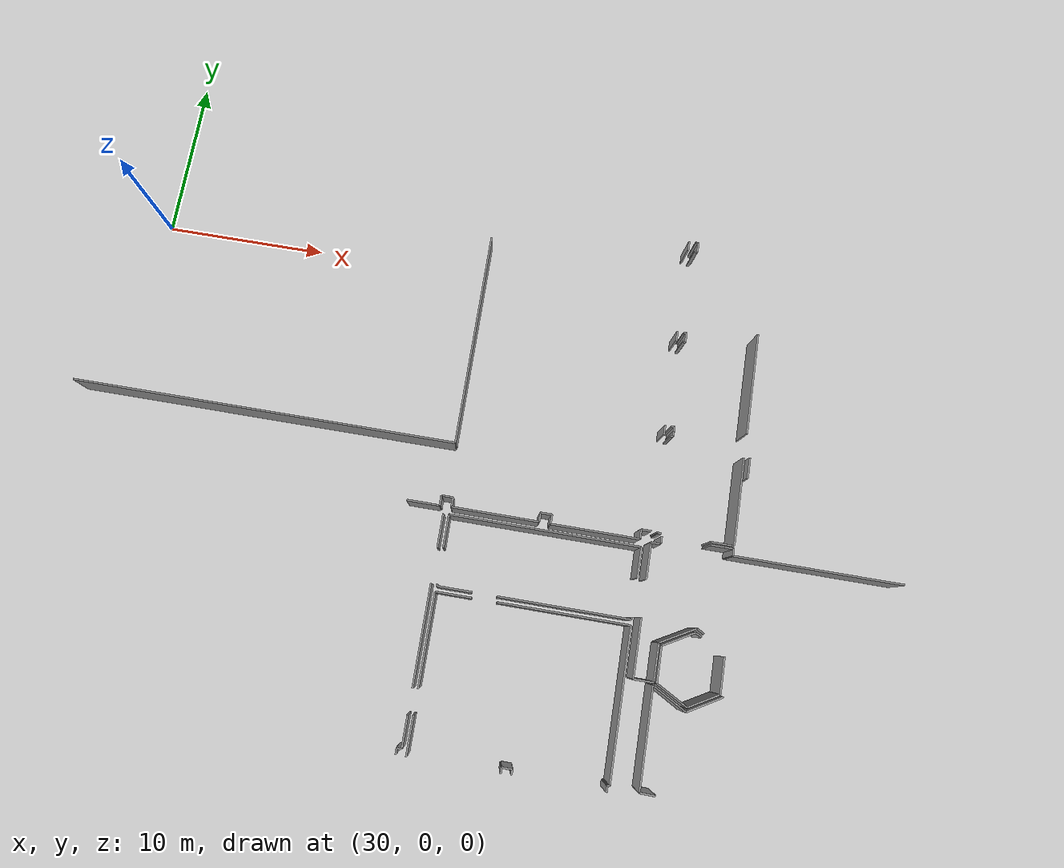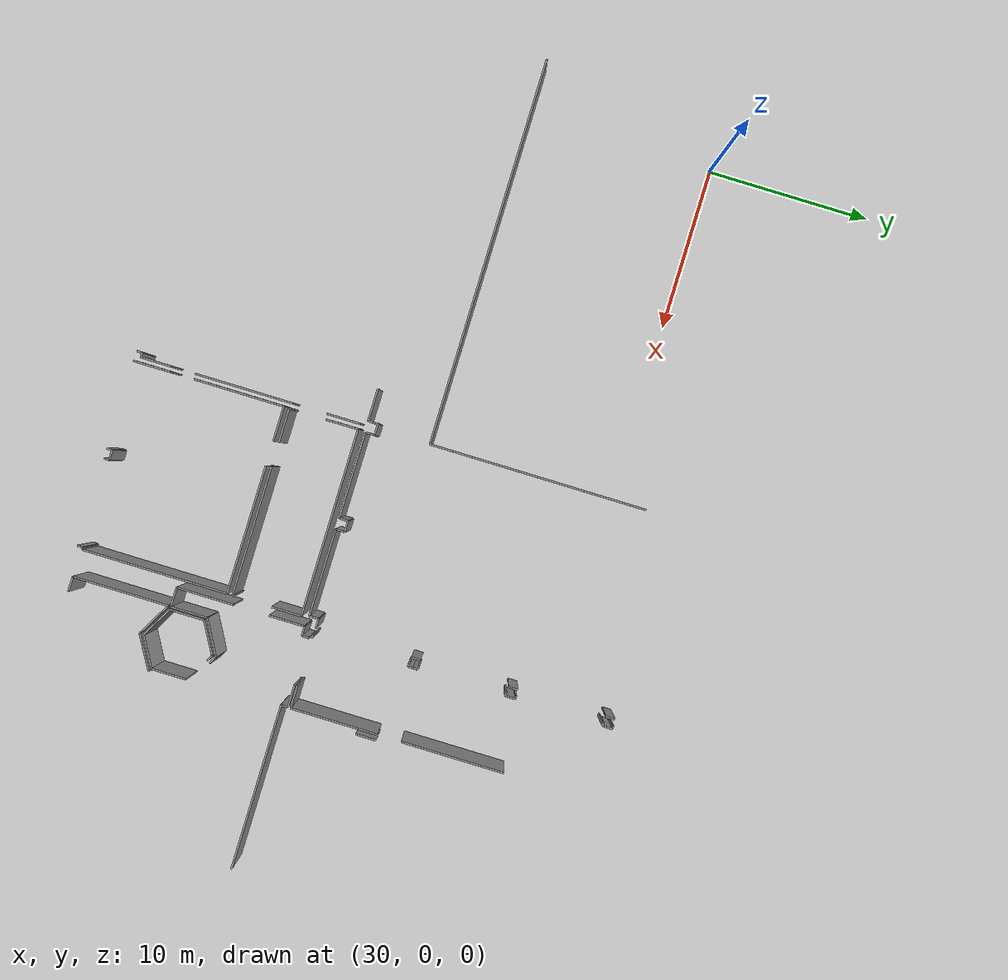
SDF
<sdf version="1.6">
 <world name="default">
  <model name="ground_plane">
   <static>1</static>
   <link name="link">
    <collision name="collision">
     <geometry><plane><normal>0 0 1</normal><size>100 100</size></plane></geometry>
     <surface><friction><ode><mu>100</mu><mu2>50</mu2></ode></friction></surface>
    </collision>
    <visual name="visual">
     <cast_shadows>0</cast_shadows>
     <geometry><plane><normal>0 0 1</normal><size>100 100</size></plane></geometry>
     <material>
      <script><uri>file://media/materials/scripts/gazebo.material</uri><name>Gazebo/Grey</name></script>
     </material>
    </visual>
   </link>
  </model>
  <model name="50010536_PLAN3">
   <static>1</static>
   <link name="Wall_413">
    <collision name="Wall_413_Collision">
     <geometry><box><size>2.01530013015 0.1 2.5</size></box></geometry>
     <pose>1.00765006507 0 1.25 0 0 0</pose>
    </collision>
    <visual name="Wall_413_Visual">
     <pose>1.00765006507 0 1.25 0 0 0</pose>
     <geometry><box><size>2.01530013015 0.1 2.5</size></box></geometry>
     <material>
      <script><uri>file://media/materials/scripts/gazebo.material</uri><name>Gazebo/Grey</name></script>
      <ambient>1 1 1 1</ambient>
     </material>
    </visual>
    <pose>153.481509697 -45.38442688 0 0 0 -1.57079632679</pose>
   </link>
   <link name="Wall_414">
    <collision name="Wall_414_Collision">
     <geometry><box><size>5.98546170206 0.1 2.5</size></box></geometry>
     <pose>2.99273085103 0 1.25 0 0 0</pose>
    </collision>
    <visual name="Wall_414_Visual">
     <pose>2.99273085103 0 1.25 0 0 0</pose>
     <geometry><box><size>5.98546170206 0.1 2.5</size></box></geometry>
     <material>
      <script><uri>file://media/materials/scripts/gazebo.material</uri><name>Gazebo/Grey</name></script>
      <ambient>1 1 1 1</ambient>
     </material>
    </visual>
    <pose>153.481509697 -49.5153350475 0 0 0 -1.57079632679</pose>
   </link>
   <link name="Wall_415">
    <collision name="Wall_415_Collision">
     <geometry><box><size>1.86572707361 0.1 2.5</size></box></geometry>
     <pose>0.932863536806 0 1.25 0 0 0</pose>
    </collision>
    <visual name="Wall_415_Visual">
     <pose>0.932863536806 0 1.25 0 0 0</pose>
     <geometry><box><size>1.86572707361 0.1 2.5</size></box></geometry>
     <material>
      <script><uri>file://media/materials/scripts/gazebo.material</uri><name>Gazebo/Grey</name></script>
      <ambient>1 1 1 1</ambient>
     </material>
    </visual>
    <pose>153.481509697 -56.9909405453 0 0 0 -1.57079632679</pose>
   </link>
   <link name="Wall_416">
    <collision name="Wall_416_Collision">
     <geometry><box><size>0.281877916389 0.1 2.5</size></box></geometry>
     <pose>0.140938958194 0 1.25 0 0 0</pose>
    </collision>
    <visual name="Wall_416_Visual">
     <pose>0.140938958194 0 1.25 0 0 0</pose>
     <geometry><box><size>0.281877916389 0.1 2.5</size></box></geometry>
     <material>
      <script><uri>file://media/materials/scripts/gazebo.material</uri><name>Gazebo/Grey</name></script>
      <ambient>1 1 1 1</ambient>
     </material>
    </visual>
    <pose>153.481509697 -58.856667619 0 0 0 3.14159265359</pose>
   </link>
   <link name="Wall_417">
    <collision name="Wall_417_Collision">
     <geometry><box><size>0.334190394566 0.1 2.5</size></box></geometry>
     <pose>0.167095197283 0 1.25 0 0 0</pose>
    </collision>
    <visual name="Wall_417_Visual">
     <pose>0.167095197283 0 1.25 0 0 0</pose>
     <geometry><box><size>0.334190394566 0.1 2.5</size></box></geometry>
     <material>
      <script><uri>file://media/materials/scripts/gazebo.material</uri><name>Gazebo/Grey</name></script>
      <ambient>1 1 1 1</ambient>
     </material>
    </visual>
    <pose>153.199631781 -58.856667619 0 0 0 -1.57079632679</pose>
   </link>
   <link name="Wall_427">
    <collision name="Wall_427_Collision">
     <geometry><box><size>2.28016379392 0.1 2.5</size></box></geometry>
     <pose>1.14008189696 0 1.25 0 0 0</pose>
    </collision>
    <visual name="Wall_427_Visual">
     <pose>1.14008189696 0 1.25 0 0 0</pose>
     <geometry><box><size>2.28016379392 0.1 2.5</size></box></geometry>
     <material>
      <script><uri>file://media/materials/scripts/gazebo.material</uri><name>Gazebo/Grey</name></script>
      <ambient>1 1 1 1</ambient>
     </material>
    </visual>
    <pose>153.807319938 -59.2266641272 0 0 0 1.57079632679</pose>
   </link>
   <link name="Wall_428">
    <collision name="Wall_428_Collision">
     <geometry><box><size>5.52125194426 0.1 2.5</size></box></geometry>
     <pose>2.76062597213 0 1.25 0 0 0</pose>
    </collision>
    <visual name="Wall_428_Visual">
     <pose>2.76062597213 0 1.25 0 0 0</pose>
     <geometry><box><size>5.52125194426 0.1 2.5</size></box></geometry>
     <material>
      <script><uri>file://media/materials/scripts/gazebo.material</uri><name>Gazebo/Grey</name></script>
      <ambient>1 1 1 1</ambient>
     </material>
    </visual>
    <pose>153.807319938 -55.4667682443 0 0 0 1.57079632679</pose>
   </link>
   <link name="Wall_429">
    <collision name="Wall_429_Collision">
     <geometry><box><size>2.14989048662 0.1 2.5</size></box></geometry>
     <pose>1.07494524331 0 1.25 0 0 0</pose>
    </collision>
    <visual name="Wall_429_Visual">
     <pose>1.07494524331 0 1.25 0 0 0</pose>
     <geometry><box><size>2.14989048662 0.1 2.5</size></box></geometry>
     <material>
      <script><uri>file://media/materials/scripts/gazebo.material</uri><name>Gazebo/Grey</name></script>
      <ambient>1 1 1 1</ambient>
     </material>
    </visual>
    <pose>153.807319938 -49.9455163 0 0 0 0.0</pose>
   </link>
   <link name="Wall_430">
    <collision name="Wall_430_Collision">
     <geometry><box><size>7.87226613338 0.1 2.5</size></box></geometry>
     <pose>3.93613306669 0 1.25 0 0 0</pose>
    </collision>
    <visual name="Wall_430_Visual">
     <pose>3.93613306669 0 1.25 0 0 0</pose>
     <geometry><box><size>7.87226613338 0.1 2.5</size></box></geometry>
     <material>
      <script><uri>file://media/materials/scripts/gazebo.material</uri><name>Gazebo/Grey</name></script>
      <ambient>1 1 1 1</ambient>
     </material>
    </visual>
    <pose>157.457511983 -49.9455163 0 0 0 0.0</pose>
   </link>
   <link name="Wall_431">
    <collision name="Wall_431_Collision">
     <geometry><box><size>8.90226327651 0.1 2.5</size></box></geometry>
     <pose>4.45113163826 0 1.25 0 0 0</pose>
    </collision>
    <visual name="Wall_431_Visual">
     <pose>4.45113163826 0 1.25 0 0 0</pose>
     <geometry><box><size>8.90226327651 0.1 2.5</size></box></geometry>
     <material>
      <script><uri>file://media/materials/scripts/gazebo.material</uri><name>Gazebo/Grey</name></script>
      <ambient>1 1 1 1</ambient>
     </material>
    </visual>
    <pose>165.329778116 -49.9455163 0 0 0 -1.57079632679</pose>
   </link>
   <link name="Wall_432">
    <collision name="Wall_432_Collision">
     <geometry><box><size>0.136875853093 0.1 2.5</size></box></geometry>
     <pose>0.0684379265467 0 1.25 0 0 0</pose>
    </collision>
    <visual name="Wall_432_Visual">
     <pose>0.0684379265467 0 1.25 0 0 0</pose>
     <geometry><box><size>0.136875853093 0.1 2.5</size></box></geometry>
     <material>
      <script><uri>file://media/materials/scripts/gazebo.material</uri><name>Gazebo/Grey</name></script>
      <ambient>1 1 1 1</ambient>
     </material>
    </visual>
    <pose>165.329778116 -58.8477795765 0 0 0 3.14159265359</pose>
   </link>
   <link name="Wall_433">
    <collision name="Wall_433_Collision">
     <geometry><box><size>0.357807192966 0.1 2.5</size></box></geometry>
     <pose>0.178903596483 0 1.25 0 0 0</pose>
    </collision>
    <visual name="Wall_433_Visual">
     <pose>0.178903596483 0 1.25 0 0 0</pose>
     <geometry><box><size>0.357807192966 0.1 2.5</size></box></geometry>
     <material>
      <script><uri>file://media/materials/scripts/gazebo.material</uri><name>Gazebo/Grey</name></script>
      <ambient>1 1 1 1</ambient>
     </material>
    </visual>
    <pose>165.192902263 -58.8477795765 0 0 0 -1.57079632679</pose>
   </link>
   <link name="Wall_434">
    <collision name="Wall_434_Collision">
     <geometry><box><size>0.321493191125 0.1 2.5</size></box></geometry>
     <pose>0.160746595562 0 1.25 0 0 0</pose>
    </collision>
    <visual name="Wall_434_Visual">
     <pose>0.160746595562 0 1.25 0 0 0</pose>
     <geometry><box><size>0.321493191125 0.1 2.5</size></box></geometry>
     <material>
      <script><uri>file://media/materials/scripts/gazebo.material</uri><name>Gazebo/Grey</name></script>
      <ambient>1 1 1 1</ambient>
     </material>
    </visual>
    <pose>159.812589277 -59.2055867695 0 0 0 1.57079632679</pose>
   </link>
   <link name="Wall_435">
    <collision name="Wall_435_Collision">
     <geometry><box><size>0.610735485509 0.1 2.5</size></box></geometry>
     <pose>0.305367742755 0 1.25 0 0 0</pose>
    </collision>
    <visual name="Wall_435_Visual">
     <pose>0.305367742755 0 1.25 0 0 0</pose>
     <geometry><box><size>0.610735485509 0.1 2.5</size></box></geometry>
     <material>
      <script><uri>file://media/materials/scripts/gazebo.material</uri><name>Gazebo/Grey</name></script>
      <ambient>1 1 1 1</ambient>
     </material>
    </visual>
    <pose>159.812589277 -58.8840935784 0 0 0 3.14159265359</pose>
   </link>
   <link name="Wall_436">
    <collision name="Wall_436_Collision">
     <geometry><box><size>0.330381233533 0.1 2.5</size></box></geometry>
     <pose>0.165190616767 0 1.25 0 0 0</pose>
    </collision>
    <visual name="Wall_436_Visual">
     <pose>0.165190616767 0 1.25 0 0 0</pose>
     <geometry><box><size>0.330381233533 0.1 2.5</size></box></geometry>
     <material>
      <script><uri>file://media/materials/scripts/gazebo.material</uri><name>Gazebo/Grey</name></script>
      <ambient>1 1 1 1</ambient>
     </material>
    </visual>
    <pose>159.201853792 -58.8840935784 0 0 0 -1.57079632679</pose>
   </link>
   <link name="Wall_437">
    <collision name="Wall_437_Collision">
     <geometry><box><size>11.512808304 0.1 2.5</size></box></geometry>
     <pose>5.75640415199 0 1.25 0 0 0</pose>
    </collision>
    <visual name="Wall_437_Visual">
     <pose>5.75640415199 0 1.25 0 0 0</pose>
     <geometry><box><size>11.512808304 0.1 2.5</size></box></geometry>
     <material>
      <script><uri>file://media/materials/scripts/gazebo.material</uri><name>Gazebo/Grey</name></script>
      <ambient>1 1 1 1</ambient>
     </material>
    </visual>
    <pose>153.813922484 -45.3699520681 0 0 0 0.0</pose>
   </link>
   <link name="Wall_438">
    <collision name="Wall_438_Collision">
     <geometry><box><size>1.82941307177 0.1 2.5</size></box></geometry>
     <pose>0.914706535885 0 1.25 0 0 0</pose>
    </collision>
    <visual name="Wall_438_Visual">
     <pose>0.914706535885 0 1.25 0 0 0</pose>
     <geometry><box><size>1.82941307177 0.1 2.5</size></box></geometry>
     <material>
      <script><uri>file://media/materials/scripts/gazebo.material</uri><name>Gazebo/Grey</name></script>
      <ambient>1 1 1 1</ambient>
     </material>
    </visual>
    <pose>165.326730788 -45.3699520681 0 0 0 -1.57079632679</pose>
   </link>
   <link name="Wall_439">
    <collision name="Wall_439_Collision">
     <geometry><box><size>0.142462622607 0.1 2.5</size></box></geometry>
     <pose>0.0712313113037 0 1.25 0 0 0</pose>
    </collision>
    <visual name="Wall_439_Visual">
     <pose>0.0712313113037 0 1.25 0 0 0</pose>
     <geometry><box><size>0.142462622607 0.1 2.5</size></box></geometry>
     <material>
      <script><uri>file://media/materials/scripts/gazebo.material</uri><name>Gazebo/Grey</name></script>
      <ambient>1 1 1 1</ambient>
     </material>
    </visual>
    <pose>165.326730788 -49.4726724439 0 0 0 -1.57079632679</pose>
   </link>
   <link name="Wall_440">
    <collision name="Wall_440_Collision">
     <geometry><box><size>7.91721423357 0.1 2.5</size></box></geometry>
     <pose>3.95860711678 0 1.25 0 0 0</pose>
    </collision>
    <visual name="Wall_440_Visual">
     <pose>3.95860711678 0 1.25 0 0 0</pose>
     <geometry><box><size>7.91721423357 0.1 2.5</size></box></geometry>
     <material>
      <script><uri>file://media/materials/scripts/gazebo.material</uri><name>Gazebo/Grey</name></script>
      <ambient>1 1 1 1</ambient>
     </material>
    </visual>
    <pose>165.326730788 -49.6151350665 0 0 0 3.14159265359</pose>
   </link>
   <link name="Wall_441">
    <collision name="Wall_441_Collision">
     <geometry><box><size>2.09376884741 0.1 2.5</size></box></geometry>
     <pose>1.04688442371 0 1.25 0 0 0</pose>
    </collision>
    <visual name="Wall_441_Visual">
     <pose>1.04688442371 0 1.25 0 0 0</pose>
     <geometry><box><size>2.09376884741 0.1 2.5</size></box></geometry>
     <material>
      <script><uri>file://media/materials/scripts/gazebo.material</uri><name>Gazebo/Grey</name></script>
      <ambient>1 1 1 1</ambient>
     </material>
    </visual>
    <pose>155.921150367 -49.6151350665 0 0 0 3.14159265359</pose>
   </link>
   <link name="Wall_442">
    <collision name="Wall_442_Collision">
     <geometry><box><size>0.123670761515 0.1 2.5</size></box></geometry>
     <pose>0.0618353807574 0 1.25 0 0 0</pose>
    </collision>
    <visual name="Wall_442_Visual">
     <pose>0.0618353807574 0 1.25 0 0 0</pose>
     <geometry><box><size>0.123670761515 0.1 2.5</size></box></geometry>
     <material>
      <script><uri>file://media/materials/scripts/gazebo.material</uri><name>Gazebo/Grey</name></script>
      <ambient>1 1 1 1</ambient>
     </material>
    </visual>
    <pose>153.827381519 -49.6151350665 0 0 0 1.57079632679</pose>
   </link>
   <link name="Wall_443">
    <collision name="Wall_443_Collision">
     <geometry><box><size>1.99096699193 0.1 2.5</size></box></geometry>
     <pose>0.995483495967 0 1.25 0 0 0</pose>
    </collision>
    <visual name="Wall_443_Visual">
     <pose>0.995483495967 0 1.25 0 0 0</pose>
     <geometry><box><size>1.99096699193 0.1 2.5</size></box></geometry>
     <material>
      <script><uri>file://media/materials/scripts/gazebo.material</uri><name>Gazebo/Grey</name></script>
      <ambient>1 1 1 1</ambient>
     </material>
    </visual>
    <pose>153.827381519 -47.3608735676 0 0 0 1.5775564279</pose>
   </link>
   <link name="Wall_819">
    <collision name="Wall_819_Collision">
     <geometry><box><size>1.2704821763 0.1 2.5</size></box></geometry>
     <pose>0.63524108815 0 1.25 0 0 0</pose>
    </collision>
    <visual name="Wall_819_Visual">
     <pose>0.63524108815 0 1.25 0 0 0</pose>
     <geometry><box><size>1.2704821763 0.1 2.5</size></box></geometry>
     <material>
      <script><uri>file://media/materials/scripts/gazebo.material</uri><name>Gazebo/Grey</name></script>
      <ambient>1 1 1 1</ambient>
     </material>
    </visual>
    <pose>171.055455036 -40.2887851951 0 0 0 1.57079632679</pose>
   </link>
   <link name="Wall_849">
    <collision name="Wall_849_Collision">
     <geometry><box><size>13.3346030537 0.1 2.5</size></box></geometry>
     <pose>6.66730152684 0 1.25 0 0 0</pose>
    </collision>
    <visual name="Wall_849_Visual">
     <pose>6.66730152684 0 1.25 0 0 0</pose>
     <geometry><box><size>13.3346030537 0.1 2.5</size></box></geometry>
     <material>
      <script><uri>file://media/materials/scripts/gazebo.material</uri><name>Gazebo/Grey</name></script>
      <ambient>1 1 1 1</ambient>
     </material>
    </visual>
    <pose>153.43986287 -27.7292194394 0 0 0 -1.57079632679</pose>
   </link>
   <link name="Wall_850">
    <collision name="Wall_850_Collision">
     <geometry><box><size>23.7171063073 0.1 2.5</size></box></geometry>
     <pose>11.8585531537 0 1.25 0 0 0</pose>
    </collision>
    <visual name="Wall_850_Visual">
     <pose>11.8585531537 0 1.25 0 0 0</pose>
     <geometry><box><size>23.7171063073 0.1 2.5</size></box></geometry>
     <material>
      <script><uri>file://media/materials/scripts/gazebo.material</uri><name>Gazebo/Grey</name></script>
      <ambient>1 1 1 1</ambient>
     </material>
    </visual>
    <pose>153.43986287 -41.0638224931 0 0 0 3.14159265359</pose>
   </link>
   <link name="Wall_853">
    <collision name="Wall_853_Collision">
     <geometry><box><size>0.301177665619 0.1 2.5</size></box></geometry>
     <pose>0.15058883281 0 1.25 0 0 0</pose>
    </collision>
    <visual name="Wall_853_Visual">
     <pose>0.15058883281 0 1.25 0 0 0</pose>
     <geometry><box><size>0.301177665619 0.1 2.5</size></box></geometry>
     <material>
      <script><uri>file://media/materials/scripts/gazebo.material</uri><name>Gazebo/Grey</name></script>
      <ambient>1 1 1 1</ambient>
     </material>
    </visual>
    <pose>166.34606228 -38.1940005714 0 0 0 1.57079632679</pose>
   </link>
   <link name="Wall_854">
    <collision name="Wall_854_Collision">
     <geometry><box><size>0.189696219408 0.1 2.5</size></box></geometry>
     <pose>0.0948481097038 0 1.25 0 0 0</pose>
    </collision>
    <visual name="Wall_854_Visual">
     <pose>0.0948481097038 0 1.25 0 0 0</pose>
     <geometry><box><size>0.189696219408 0.1 2.5</size></box></geometry>
     <material>
      <script><uri>file://media/materials/scripts/gazebo.material</uri><name>Gazebo/Grey</name></script>
      <ambient>1 1 1 1</ambient>
     </material>
    </visual>
    <pose>166.34606228 -37.8928229058 0 0 0 3.14159265359</pose>
   </link>
   <link name="Wall_855">
    <collision name="Wall_855_Collision">
     <geometry><box><size>0.181570009206 0.1 2.5</size></box></geometry>
     <pose>0.0907850046028 0 1.25 0 0 0</pose>
    </collision>
    <visual name="Wall_855_Visual">
     <pose>0.0907850046028 0 1.25 0 0 0</pose>
     <geometry><box><size>0.181570009206 0.1 2.5</size></box></geometry>
     <material>
      <script><uri>file://media/materials/scripts/gazebo.material</uri><name>Gazebo/Grey</name></script>
      <ambient>1 1 1 1</ambient>
     </material>
    </visual>
    <pose>166.15636606 -32.5066692061 0 0 0 0.0</pose>
   </link>
   <link name="Wall_856">
    <collision name="Wall_856_Collision">
     <geometry><box><size>0.61911563978 0.1 2.5</size></box></geometry>
     <pose>0.30955781989 0 1.25 0 0 0</pose>
    </collision>
    <visual name="Wall_856_Visual">
     <pose>0.30955781989 0 1.25 0 0 0</pose>
     <geometry><box><size>0.61911563978 0.1 2.5</size></box></geometry>
     <material>
      <script><uri>file://media/materials/scripts/gazebo.material</uri><name>Gazebo/Grey</name></script>
      <ambient>1 1 1 1</ambient>
     </material>
    </visual>
    <pose>166.33793607 -32.5066692061 0 0 0 1.57079632679</pose>
   </link>
   <link name="Wall_857">
    <collision name="Wall_857_Collision">
     <geometry><box><size>0.169126749833 0.1 2.5</size></box></geometry>
     <pose>0.0845633749167 0 1.25 0 0 0</pose>
    </collision>
    <visual name="Wall_857_Visual">
     <pose>0.0845633749167 0 1.25 0 0 0</pose>
     <geometry><box><size>0.169126749833 0.1 2.5</size></box></geometry>
     <material>
      <script><uri>file://media/materials/scripts/gazebo.material</uri><name>Gazebo/Grey</name></script>
      <ambient>1 1 1 1</ambient>
     </material>
    </visual>
    <pose>166.33793607 -31.8875535663 0 0 0 3.14159265359</pose>
   </link>
   <link name="Wall_858">
    <collision name="Wall_858_Collision">
     <geometry><box><size>0.191981716027 0.1 2.5</size></box></geometry>
     <pose>0.0959908580135 0 1.25 0 0 0</pose>
    </collision>
    <visual name="Wall_858_Visual">
     <pose>0.0959908580135 0 1.25 0 0 0</pose>
     <geometry><box><size>0.191981716027 0.1 2.5</size></box></geometry>
     <material>
      <script><uri>file://media/materials/scripts/gazebo.material</uri><name>Gazebo/Grey</name></script>
      <ambient>1 1 1 1</ambient>
     </material>
    </visual>
    <pose>166.16880932 -26.5064787481 0 0 0 0.0</pose>
   </link>
   <link name="Wall_859">
    <collision name="Wall_859_Collision">
     <geometry><box><size>0.610227597372 0.1 2.5</size></box></geometry>
     <pose>0.305113798686 0 1.25 0 0 0</pose>
    </collision>
    <visual name="Wall_859_Visual">
     <pose>0.305113798686 0 1.25 0 0 0</pose>
     <geometry><box><size>0.610227597372 0.1 2.5</size></box></geometry>
     <material>
      <script><uri>file://media/materials/scripts/gazebo.material</uri><name>Gazebo/Grey</name></script>
      <ambient>1 1 1 1</ambient>
     </material>
    </visual>
    <pose>166.360791036 -26.5064787481 0 0 0 1.57079632679</pose>
   </link>
   <link name="Wall_860">
    <collision name="Wall_860_Collision">
     <geometry><box><size>0.193759324509 0.1 2.5</size></box></geometry>
     <pose>0.0968796622544 0 1.25 0 0 0</pose>
    </collision>
    <visual name="Wall_860_Visual">
     <pose>0.0968796622544 0 1.25 0 0 0</pose>
     <geometry><box><size>0.193759324509 0.1 2.5</size></box></geometry>
     <material>
      <script><uri>file://media/materials/scripts/gazebo.material</uri><name>Gazebo/Grey</name></script>
      <ambient>1 1 1 1</ambient>
     </material>
    </visual>
    <pose>166.360791036 -25.8962511507 0 0 0 3.14159265359</pose>
   </link>
   <link name="Wall_869">
    <collision name="Wall_869_Collision">
     <geometry><box><size>6.34504650351 0.1 2.5</size></box></geometry>
     <pose>3.17252325175 0 1.25 0 0 0</pose>
    </collision>
    <visual name="Wall_869_Visual">
     <pose>3.17252325175 0 1.25 0 0 0</pose>
     <geometry><box><size>6.34504650351 0.1 2.5</size></box></geometry>
     <material>
      <script><uri>file://media/materials/scripts/gazebo.material</uri><name>Gazebo/Grey</name></script>
      <ambient>1 1 1 1</ambient>
     </material>
    </visual>
    <pose>170.710598991 -31.2547249468 0 0 0 -1.57079632679</pose>
   </link>
   <link name="Wall_870">
    <collision name="Wall_870_Collision">
     <geometry><box><size>5.34298320795 0.1 2.5</size></box></geometry>
     <pose>2.67149160397 0 1.25 0 0 0</pose>
    </collision>
    <visual name="Wall_870_Visual">
     <pose>2.67149160397 0 1.25 0 0 0</pose>
     <geometry><box><size>5.34298320795 0.1 2.5</size></box></geometry>
     <material>
      <script><uri>file://media/materials/scripts/gazebo.material</uri><name>Gazebo/Grey</name></script>
      <ambient>1 1 1 1</ambient>
     </material>
    </visual>
    <pose>170.710598991 -39.0604577342 0 0 0 -1.57079632679</pose>
   </link>
   <link name="Wall_871">
    <collision name="Wall_871_Collision">
     <geometry><box><size>1.39643843443 0.1 2.5</size></box></geometry>
     <pose>0.698219217217 0 1.25 0 0 0</pose>
    </collision>
    <visual name="Wall_871_Visual">
     <pose>0.698219217217 0 1.25 0 0 0</pose>
     <geometry><box><size>1.39643843443 0.1 2.5</size></box></geometry>
     <material>
      <script><uri>file://media/materials/scripts/gazebo.material</uri><name>Gazebo/Grey</name></script>
      <ambient>1 1 1 1</ambient>
     </material>
    </visual>
    <pose>170.710598991 -44.4034409421 0 0 0 3.14159265359</pose>
   </link>
   <link name="Wall_872">
    <collision name="Wall_872_Collision">
     <geometry><box><size>0.224232612767 0.1 2.5</size></box></geometry>
     <pose>0.112116306384 0 1.25 0 0 0</pose>
    </collision>
    <visual name="Wall_872_Visual">
     <pose>0.112116306384 0 1.25 0 0 0</pose>
     <geometry><box><size>0.224232612767 0.1 2.5</size></box></geometry>
     <material>
      <script><uri>file://media/materials/scripts/gazebo.material</uri><name>Gazebo/Grey</name></script>
      <ambient>1 1 1 1</ambient>
     </material>
    </visual>
    <pose>166.398374758 -44.4034409421 0 0 0 3.14159265359</pose>
   </link>
   <link name="Wall_873">
    <collision name="Wall_873_Collision">
     <geometry><box><size>0.0845633749167 0.1 2.5</size></box></geometry>
     <pose>0.0422816874583 0 1.25 0 0 0</pose>
    </collision>
    <visual name="Wall_873_Visual">
     <pose>0.0422816874583 0 1.25 0 0 0</pose>
     <geometry><box><size>0.0845633749167 0.1 2.5</size></box></geometry>
     <material>
      <script><uri>file://media/materials/scripts/gazebo.material</uri><name>Gazebo/Grey</name></script>
      <ambient>1 1 1 1</ambient>
     </material>
    </visual>
    <pose>166.174142145 -44.4034409421 0 0 0 1.57079632679</pose>
   </link>
   <link name="Wall_874">
    <collision name="Wall_874_Collision">
     <geometry><box><size>0.159222931149 0.1 2.5</size></box></geometry>
     <pose>0.0796114655747 0 1.25 0 0 0</pose>
    </collision>
    <visual name="Wall_874_Visual">
     <pose>0.0796114655747 0 1.25 0 0 0</pose>
     <geometry><box><size>0.159222931149 0.1 2.5</size></box></geometry>
     <material>
      <script><uri>file://media/materials/scripts/gazebo.material</uri><name>Gazebo/Grey</name></script>
      <ambient>1 1 1 1</ambient>
     </material>
    </visual>
    <pose>166.174142145 -38.4895914675 0 0 0 0.0</pose>
   </link>
   <link name="Wall_875">
    <collision name="Wall_875_Collision">
     <geometry><box><size>0.295863476684 0.1 2.5</size></box></geometry>
     <pose>0.147931738342 0 1.25 0 0 0</pose>
    </collision>
    <visual name="Wall_875_Visual">
     <pose>0.147931738342 0 1.25 0 0 0</pose>
     <geometry><box><size>0.295863476684 0.1 2.5</size></box></geometry>
     <material>
      <script><uri>file://media/materials/scripts/gazebo.material</uri><name>Gazebo/Grey</name></script>
      <ambient>1 1 1 1</ambient>
     </material>
    </visual>
    <pose>166.333365076 -38.4895914675 0 0 0 1.52786739094</pose>
   </link>
   <link name="Wall_880">
    <collision name="Wall_880_Collision">
     <geometry><box><size>0.558676951401 0.1 2.5</size></box></geometry>
     <pose>0.279338475701 0 1.25 0 0 0</pose>
    </collision>
    <visual name="Wall_880_Visual">
     <pose>0.279338475701 0 1.25 0 0 0</pose>
     <geometry><box><size>0.558676951401 0.1 2.5</size></box></geometry>
     <material>
      <script><uri>file://media/materials/scripts/gazebo.material</uri><name>Gazebo/Grey</name></script>
      <ambient>1 1 1 1</ambient>
     </material>
    </visual>
    <pose>165.781798559 -25.9180903406 0 0 0 -1.57079632679</pose>
   </link>
   <link name="Wall_881">
    <collision name="Wall_881_Collision">
     <geometry><box><size>0.589658127797 0.1 2.5</size></box></geometry>
     <pose>0.294829063899 0 1.25 0 0 0</pose>
    </collision>
    <visual name="Wall_881_Visual">
     <pose>0.294829063899 0 1.25 0 0 0</pose>
     <geometry><box><size>0.589658127797 0.1 2.5</size></box></geometry>
     <material>
      <script><uri>file://media/materials/scripts/gazebo.material</uri><name>Gazebo/Grey</name></script>
      <ambient>1 1 1 1</ambient>
     </material>
    </visual>
    <pose>165.781798559 -31.893648224 0 0 0 -1.57079632679</pose>
   </link>
   <link name="Wall_882">
    <collision name="Wall_882_Collision">
     <geometry><box><size>0.583817414215 0.1 2.5</size></box></geometry>
     <pose>0.291908707107 0 1.25 0 0 0</pose>
    </collision>
    <visual name="Wall_882_Visual">
     <pose>0.291908707107 0 1.25 0 0 0</pose>
     <geometry><box><size>0.583817414215 0.1 2.5</size></box></geometry>
     <material>
      <script><uri>file://media/materials/scripts/gazebo.material</uri><name>Gazebo/Grey</name></script>
      <ambient>1 1 1 1</ambient>
     </material>
    </visual>
    <pose>165.781798559 -37.8824111989 0 0 0 -1.57079632679</pose>
   </link>
   <link name="Wall_883">
    <collision name="Wall_883_Collision">
     <geometry><box><size>0.594990953243 0.1 2.5</size></box></geometry>
     <pose>0.297495476621 0 1.25 0 0 0</pose>
    </collision>
    <visual name="Wall_883_Visual">
     <pose>0.297495476621 0 1.25 0 0 0</pose>
     <geometry><box><size>0.594990953243 0.1 2.5</size></box></geometry>
     <material>
      <script><uri>file://media/materials/scripts/gazebo.material</uri><name>Gazebo/Grey</name></script>
      <ambient>1 1 1 1</ambient>
     </material>
    </visual>
    <pose>165.781798559 -44.3490969114 0 0 0 3.14159265359</pose>
   </link>
   <link name="Wall_884">
    <collision name="Wall_884_Collision">
     <geometry><box><size>0.57619909215 0.1 2.5</size></box></geometry>
     <pose>0.288099546075 0 1.25 0 0 0</pose>
    </collision>
    <visual name="Wall_884_Visual">
     <pose>0.288099546075 0 1.25 0 0 0</pose>
     <geometry><box><size>0.57619909215 0.1 2.5</size></box></geometry>
     <material>
      <script><uri>file://media/materials/scripts/gazebo.material</uri><name>Gazebo/Grey</name></script>
      <ambient>1 1 1 1</ambient>
     </material>
    </visual>
    <pose>165.186807606 -44.3490969114 0 0 0 -1.57079632679</pose>
   </link>
   <link name="Wall_885">
    <collision name="Wall_885_Collision">
     <geometry><box><size>5.33561882995 0.1 2.5</size></box></geometry>
     <pose>2.66780941498 0 1.25 0 0 0</pose>
    </collision>
    <visual name="Wall_885_Visual">
     <pose>2.66780941498 0 1.25 0 0 0</pose>
     <geometry><box><size>5.33561882995 0.1 2.5</size></box></geometry>
     <material>
      <script><uri>file://media/materials/scripts/gazebo.material</uri><name>Gazebo/Grey</name></script>
      <ambient>1 1 1 1</ambient>
     </material>
    </visual>
    <pose>165.186807606 -44.9252960036 0 0 0 3.14159265359</pose>
   </link>
   <link name="Wall_886">
    <collision name="Wall_886_Collision">
     <geometry><box><size>0.558676951401 0.1 2.5</size></box></geometry>
     <pose>0.279338475701 0 1.25 0 0 0</pose>
    </collision>
    <visual name="Wall_886_Visual">
     <pose>0.279338475701 0 1.25 0 0 0</pose>
     <geometry><box><size>0.558676951401 0.1 2.5</size></box></geometry>
     <material>
      <script><uri>file://media/materials/scripts/gazebo.material</uri><name>Gazebo/Grey</name></script>
      <ambient>1 1 1 1</ambient>
     </material>
    </visual>
    <pose>159.851188776 -44.9252960036 0 0 0 1.57079632679</pose>
   </link>
   <link name="Wall_887">
    <collision name="Wall_887_Collision">
     <geometry><box><size>0.690473923118 0.1 2.5</size></box></geometry>
     <pose>0.345236961559 0 1.25 0 0 0</pose>
    </collision>
    <visual name="Wall_887_Visual">
     <pose>0.345236961559 0 1.25 0 0 0</pose>
     <geometry><box><size>0.690473923118 0.1 2.5</size></box></geometry>
     <material>
      <script><uri>file://media/materials/scripts/gazebo.material</uri><name>Gazebo/Grey</name></script>
      <ambient>1 1 1 1</ambient>
     </material>
    </visual>
    <pose>159.851188776 -44.3666190522 0 0 0 3.14159265359</pose>
   </link>
   <link name="Wall_888">
    <collision name="Wall_888_Collision">
     <geometry><box><size>0.545979747961 0.1 2.5</size></box></geometry>
     <pose>0.27298987398 0 1.25 0 0 0</pose>
    </collision>
    <visual name="Wall_888_Visual">
     <pose>0.27298987398 0 1.25 0 0 0</pose>
     <geometry><box><size>0.545979747961 0.1 2.5</size></box></geometry>
     <material>
      <script><uri>file://media/materials/scripts/gazebo.material</uri><name>Gazebo/Grey</name></script>
      <ambient>1 1 1 1</ambient>
     </material>
    </visual>
    <pose>159.160714853 -44.3666190522 0 0 0 -1.57079632679</pose>
   </link>
   <link name="Wall_889">
    <collision name="Wall_889_Collision">
     <geometry><box><size>5.28305240771 0.1 2.5</size></box></geometry>
     <pose>2.64152620385 0 1.25 0 0 0</pose>
    </collision>
    <visual name="Wall_889_Visual">
     <pose>2.64152620385 0 1.25 0 0 0</pose>
     <geometry><box><size>5.28305240771 0.1 2.5</size></box></geometry>
     <material>
      <script><uri>file://media/materials/scripts/gazebo.material</uri><name>Gazebo/Grey</name></script>
      <ambient>1 1 1 1</ambient>
     </material>
    </visual>
    <pose>159.160714853 -44.9125988001 0 0 0 3.14159265359</pose>
   </link>
   <link name="Wall_890">
    <collision name="Wall_890_Collision">
     <geometry><box><size>0.57619909215 0.1 2.5</size></box></geometry>
     <pose>0.288099546075 0 1.25 0 0 0</pose>
    </collision>
    <visual name="Wall_890_Visual">
     <pose>0.288099546075 0 1.25 0 0 0</pose>
     <geometry><box><size>0.57619909215 0.1 2.5</size></box></geometry>
     <material>
      <script><uri>file://media/materials/scripts/gazebo.material</uri><name>Gazebo/Grey</name></script>
      <ambient>1 1 1 1</ambient>
     </material>
    </visual>
    <pose>153.877662445 -44.9125988001 0 0 0 1.57079632679</pose>
   </link>
   <link name="Wall_891">
    <collision name="Wall_891_Collision">
     <geometry><box><size>0.699615909596 0.1 2.5</size></box></geometry>
     <pose>0.349807954798 0 1.25 0 0 0</pose>
    </collision>
    <visual name="Wall_891_Visual">
     <pose>0.349807954798 0 1.25 0 0 0</pose>
     <geometry><box><size>0.699615909596 0.1 2.5</size></box></geometry>
     <material>
      <script><uri>file://media/materials/scripts/gazebo.material</uri><name>Gazebo/Grey</name></script>
      <ambient>1 1 1 1</ambient>
     </material>
    </visual>
    <pose>153.877662445 -44.336399708 0 0 0 3.14159265359</pose>
   </link>
   <link name="Wall_892">
    <collision name="Wall_892_Collision">
     <geometry><box><size>0.606418436339 0.1 2.5</size></box></geometry>
     <pose>0.30320921817 0 1.25 0 0 0</pose>
    </collision>
    <visual name="Wall_892_Visual">
     <pose>0.30320921817 0 1.25 0 0 0</pose>
     <geometry><box><size>0.606418436339 0.1 2.5</size></box></geometry>
     <material>
      <script><uri>file://media/materials/scripts/gazebo.material</uri><name>Gazebo/Grey</name></script>
      <ambient>1 1 1 1</ambient>
     </material>
    </visual>
    <pose>153.178046535 -44.336399708 0 0 0 -1.57079632679</pose>
   </link>
   <link name="Wall_893">
    <collision name="Wall_893_Collision">
     <geometry><box><size>1.98812811478 0.1 2.5</size></box></geometry>
     <pose>0.994064057391 0 1.25 0 0 0</pose>
    </collision>
    <visual name="Wall_893_Visual">
     <pose>0.994064057391 0 1.25 0 0 0</pose>
     <geometry><box><size>1.98812811478 0.1 2.5</size></box></geometry>
     <material>
      <script><uri>file://media/materials/scripts/gazebo.material</uri><name>Gazebo/Grey</name></script>
      <ambient>1 1 1 1</ambient>
     </material>
    </visual>
    <pose>153.178046535 -44.9428181443 0 0 0 3.14159265359</pose>
   </link>
   <link name="Wall_901">
    <collision name="Wall_901_Collision">
     <geometry><box><size>2.12424213567 0.1 2.5</size></box></geometry>
     <pose>1.06212106783 0 1.25 0 0 0</pose>
    </collision>
    <visual name="Wall_901_Visual">
     <pose>1.06212106783 0 1.25 0 0 0</pose>
     <geometry><box><size>2.12424213567 0.1 2.5</size></box></geometry>
     <material>
      <script><uri>file://media/materials/scripts/gazebo.material</uri><name>Gazebo/Grey</name></script>
      <ambient>1 1 1 1</ambient>
     </material>
    </visual>
    <pose>167.214297051 -52.9098054154 0 0 0 1.57079632679</pose>
   </link>
   <link name="Wall_902">
    <collision name="Wall_902_Collision">
     <geometry><box><size>2.14683498735 0.1 2.5</size></box></geometry>
     <pose>1.07341749368 0 1.25 0 0 0</pose>
    </collision>
    <visual name="Wall_902_Visual">
     <pose>1.07341749368 0 1.25 0 0 0</pose>
     <geometry><box><size>2.14683498735 0.1 2.5</size></box></geometry>
     <material>
      <script><uri>file://media/materials/scripts/gazebo.material</uri><name>Gazebo/Grey</name></script>
      <ambient>1 1 1 1</ambient>
     </material>
    </visual>
    <pose>167.214297051 -50.7855632797 0 0 0 0.517737623145</pose>
   </link>
   <link name="Wall_903">
    <collision name="Wall_903_Collision">
     <geometry><box><size>0.416039831555 0.1 2.5</size></box></geometry>
     <pose>0.208019915778 0 1.25 0 0 0</pose>
    </collision>
    <visual name="Wall_903_Visual">
     <pose>0.208019915778 0 1.25 0 0 0</pose>
     <geometry><box><size>0.416039831555 0.1 2.5</size></box></geometry>
     <material>
      <script><uri>file://media/materials/scripts/gazebo.material</uri><name>Gazebo/Grey</name></script>
      <ambient>1 1 1 1</ambient>
     </material>
    </visual>
    <pose>169.079770181 -49.7230612957 0 0 0 -0.499687719329</pose>
   </link>
   <link name="Wall_904">
    <collision name="Wall_904_Collision">
     <geometry><box><size>2.13973272387 0.1 2.5</size></box></geometry>
     <pose>1.06986636193 0 1.25 0 0 0</pose>
    </collision>
    <visual name="Wall_904_Visual">
     <pose>1.06986636193 0 1.25 0 0 0</pose>
     <geometry><box><size>2.13973272387 0.1 2.5</size></box></geometry>
     <material>
      <script><uri>file://media/materials/scripts/gazebo.material</uri><name>Gazebo/Grey</name></script>
      <ambient>1 1 1 1</ambient>
     </material>
    </visual>
    <pose>170.870837698 -50.7875948322 0 0 0 -1.57079632679</pose>
   </link>
   <link name="Wall_905">
    <collision name="Wall_905_Collision">
     <geometry><box><size>2.04333101134 0.1 2.5</size></box></geometry>
     <pose>1.02166550567 0 1.25 0 0 0</pose>
    </collision>
    <visual name="Wall_905_Visual">
     <pose>1.02166550567 0 1.25 0 0 0</pose>
     <geometry><box><size>2.04333101134 0.1 2.5</size></box></geometry>
     <material>
      <script><uri>file://media/materials/scripts/gazebo.material</uri><name>Gazebo/Grey</name></script>
      <ambient>1 1 1 1</ambient>
     </material>
    </visual>
    <pose>170.870837698 -52.9273275561 0 0 0 -2.62289357347</pose>
   </link>
   <link name="Wall_906">
    <collision name="Wall_906_Collision">
     <geometry><box><size>2.1456438277 0.1 2.5</size></box></geometry>
     <pose>1.07282191385 0 1.25 0 0 0</pose>
    </collision>
    <visual name="Wall_906_Visual">
     <pose>1.07282191385 0 1.25 0 0 0</pose>
     <geometry><box><size>2.1456438277 0.1 2.5</size></box></geometry>
     <material>
      <script><uri>file://media/materials/scripts/gazebo.material</uri><name>Gazebo/Grey</name></script>
      <ambient>1 1 1 1</ambient>
     </material>
    </visual>
    <pose>169.096276545 -53.9403104466 0 0 0 2.64062128401</pose>
   </link>
   <link name="Wall_907">
    <collision name="Wall_907_Collision">
     <geometry><box><size>5.88109068978 0.1 2.5</size></box></geometry>
     <pose>2.94054534489 0 1.25 0 0 0</pose>
    </collision>
    <visual name="Wall_907_Visual">
     <pose>2.94054534489 0 1.25 0 0 0</pose>
     <geometry><box><size>5.88109068978 0.1 2.5</size></box></geometry>
     <material>
      <script><uri>file://media/materials/scripts/gazebo.material</uri><name>Gazebo/Grey</name></script>
      <ambient>1 1 1 1</ambient>
     </material>
    </visual>
    <pose>167.021553503 -58.9226930768 0 0 0 1.57079632679</pose>
   </link>
   <link name="Wall_908">
    <collision name="Wall_908_Collision">
     <geometry><box><size>2.34504842503 0.1 2.5</size></box></geometry>
     <pose>1.17252421252 0 1.25 0 0 0</pose>
    </collision>
    <visual name="Wall_908_Visual">
     <pose>1.17252421252 0 1.25 0 0 0</pose>
     <geometry><box><size>2.34504842503 0.1 2.5</size></box></geometry>
     <material>
      <script><uri>file://media/materials/scripts/gazebo.material</uri><name>Gazebo/Grey</name></script>
      <ambient>1 1 1 1</ambient>
     </material>
    </visual>
    <pose>167.021553503 -53.0416023871 0 0 0 -0.511852660046</pose>
   </link>
   <link name="Wall_909">
    <collision name="Wall_909_Collision">
     <geometry><box><size>2.31473263005 0.1 2.5</size></box></geometry>
     <pose>1.15736631502 0 1.25 0 0 0</pose>
    </collision>
    <visual name="Wall_909_Visual">
     <pose>1.15736631502 0 1.25 0 0 0</pose>
     <geometry><box><size>2.31473263005 0.1 2.5</size></box></geometry>
     <material>
      <script><uri>file://media/materials/scripts/gazebo.material</uri><name>Gazebo/Grey</name></script>
      <ambient>1 1 1 1</ambient>
     </material>
    </visual>
    <pose>169.066057201 -54.1901914103 0 0 0 0.525555323368</pose>
   </link>
   <link name="Wall_917">
    <collision name="Wall_917_Collision">
     <geometry><box><size>0.908485713638 0.1 2.5</size></box></geometry>
     <pose>0.454242856819 0 1.25 0 0 0</pose>
    </collision>
    <visual name="Wall_917_Visual">
     <pose>0.454242856819 0 1.25 0 0 0</pose>
     <geometry><box><size>0.908485713638 0.1 2.5</size></box></geometry>
     <material>
      <script><uri>file://media/materials/scripts/gazebo.material</uri><name>Gazebo/Grey</name></script>
      <ambient>1 1 1 1</ambient>
     </material>
    </visual>
    <pose>167.929911437 -58.937929721 0 0 0 3.12482039367</pose>
   </link>
   <link name="Wall_918">
    <collision name="Wall_918_Collision">
     <geometry><box><size>3.50798336666 0.1 2.5</size></box></geometry>
     <pose>1.75399168333 0 1.25 0 0 0</pose>
    </collision>
    <visual name="Wall_918_Visual">
     <pose>1.75399168333 0 1.25 0 0 0</pose>
     <geometry><box><size>3.50798336666 0.1 2.5</size></box></geometry>
     <material>
      <script><uri>file://media/materials/scripts/gazebo.material</uri><name>Gazebo/Grey</name></script>
      <ambient>1 1 1 1</ambient>
     </material>
    </visual>
    <pose>165.853918674 -52.8945687712 0 0 0 1.57079632679</pose>
   </link>
   <link name="Wall_919">
    <collision name="Wall_919_Collision">
     <geometry><box><size>2.1867123766 0.1 2.5</size></box></geometry>
     <pose>1.0933561883 0 1.25 0 0 0</pose>
    </collision>
    <visual name="Wall_919_Visual">
     <pose>1.0933561883 0 1.25 0 0 0</pose>
     <geometry><box><size>2.1867123766 0.1 2.5</size></box></geometry>
     <material>
      <script><uri>file://media/materials/scripts/gazebo.material</uri><name>Gazebo/Grey</name></script>
      <ambient>1 1 1 1</ambient>
     </material>
    </visual>
    <pose>165.853918674 -47.1945402025 0 0 0 1.57079632679</pose>
   </link>
   <link name="Wall_920">
    <collision name="Wall_920_Collision">
     <geometry><box><size>0.577468812494 0.1 2.5</size></box></geometry>
     <pose>0.288734406247 0 1.25 0 0 0</pose>
    </collision>
    <visual name="Wall_920_Visual">
     <pose>0.288734406247 0 1.25 0 0 0</pose>
     <geometry><box><size>0.577468812494 0.1 2.5</size></box></geometry>
     <material>
      <script><uri>file://media/materials/scripts/gazebo.material</uri><name>Gazebo/Grey</name></script>
      <ambient>1 1 1 1</ambient>
     </material>
    </visual>
    <pose>165.853918674 -45.0078278259 0 0 0 0.0</pose>
   </link>
   <link name="Wall_921">
    <collision name="Wall_921_Collision">
     <geometry><box><size>0.440339015332 0.1 2.5</size></box></geometry>
     <pose>0.220169507666 0 1.25 0 0 0</pose>
    </collision>
    <visual name="Wall_921_Visual">
     <pose>0.220169507666 0 1.25 0 0 0</pose>
     <geometry><box><size>0.440339015332 0.1 2.5</size></box></geometry>
     <material>
      <script><uri>file://media/materials/scripts/gazebo.material</uri><name>Gazebo/Grey</name></script>
      <ambient>1 1 1 1</ambient>
     </material>
    </visual>
    <pose>166.431387487 -45.0078278259 0 0 0 1.57079632679</pose>
   </link>
   <link name="Wall_922">
    <collision name="Wall_922_Collision">
     <geometry><box><size>1.35580738342 0.1 2.5</size></box></geometry>
     <pose>0.677903691712 0 1.25 0 0 0</pose>
    </collision>
    <visual name="Wall_922_Visual">
     <pose>0.677903691712 0 1.25 0 0 0</pose>
     <geometry><box><size>1.35580738342 0.1 2.5</size></box></geometry>
     <material>
      <script><uri>file://media/materials/scripts/gazebo.material</uri><name>Gazebo/Grey</name></script>
      <ambient>1 1 1 1</ambient>
     </material>
    </visual>
    <pose>169.348443005 -44.5674888106 0 0 0 0.0</pose>
   </link>
   <link name="Wall_923">
    <collision name="Wall_923_Collision">
     <geometry><box><size>0.418753769482 0.1 2.5</size></box></geometry>
     <pose>0.209376884741 0 1.25 0 0 0</pose>
    </collision>
    <visual name="Wall_923_Visual">
     <pose>0.209376884741 0 1.25 0 0 0</pose>
     <geometry><box><size>0.418753769482 0.1 2.5</size></box></geometry>
     <material>
      <script><uri>file://media/materials/scripts/gazebo.material</uri><name>Gazebo/Grey</name></script>
      <ambient>1 1 1 1</ambient>
     </material>
    </visual>
    <pose>170.704250389 -44.5674888106 0 0 0 -1.57079632679</pose>
   </link>
   <link name="Wall_924">
    <collision name="Wall_924_Collision">
     <geometry><box><size>10.0851347491 0.1 2.5</size></box></geometry>
     <pose>5.04256737454 0 1.25 0 0 0</pose>
    </collision>
    <visual name="Wall_924_Visual">
     <pose>5.04256737454 0 1.25 0 0 0</pose>
     <geometry><box><size>10.0851347491 0.1 2.5</size></box></geometry>
     <material>
      <script><uri>file://media/materials/scripts/gazebo.material</uri><name>Gazebo/Grey</name></script>
      <ambient>1 1 1 1</ambient>
     </material>
    </visual>
    <pose>170.704250389 -44.9862425801 0 0 0 0.0</pose>
   </link>
   <link name="Wall_930">
    <collision name="Wall_930_Collision">
     <geometry><box><size>0.494394602478 0.1 2.5</size></box></geometry>
     <pose>0.247197301239 0 1.25 0 0 0</pose>
    </collision>
    <visual name="Wall_930_Visual">
     <pose>0.247197301239 0 1.25 0 0 0</pose>
     <geometry><box><size>0.494394602478 0.1 2.5</size></box></geometry>
     <material>
      <script><uri>file://media/materials/scripts/gazebo.material</uri><name>Gazebo/Grey</name></script>
      <ambient>1 1 1 1</ambient>
     </material>
    </visual>
    <pose>169.55718503 -49.7215376313 0 0 0 2.63888446224</pose>
   </link>
   <link name="Wall_931">
    <collision name="Wall_931_Collision">
     <geometry><box><size>2.37912336224 0.1 2.5</size></box></geometry>
     <pose>1.18956168112 0 1.25 0 0 0</pose>
    </collision>
    <visual name="Wall_931_Visual">
     <pose>1.18956168112 0 1.25 0 0 0</pose>
     <geometry><box><size>2.37912336224 0.1 2.5</size></box></geometry>
     <material>
      <script><uri>file://media/materials/scripts/gazebo.material</uri><name>Gazebo/Grey</name></script>
      <ambient>1 1 1 1</ambient>
     </material>
    </visual>
    <pose>169.123956449 -49.4833380948 0 0 0 -2.63105217888</pose>
   </link>
   <link name="Wall_932">
    <collision name="Wall_932_Collision">
     <geometry><box><size>2.24410373615 0.1 2.5</size></box></geometry>
     <pose>1.12205186808 0 1.25 0 0 0</pose>
    </collision>
    <visual name="Wall_932_Visual">
     <pose>1.12205186808 0 1.25 0 0 0</pose>
     <geometry><box><size>2.24410373615 0.1 2.5</size></box></geometry>
     <material>
      <script><uri>file://media/materials/scripts/gazebo.material</uri><name>Gazebo/Grey</name></script>
      <ambient>1 1 1 1</ambient>
     </material>
    </visual>
    <pose>167.04821763 -50.6458940418 0 0 0 -1.57079632679</pose>
   </link>
   <link name="Wall_933">
    <collision name="Wall_933_Collision">
     <geometry><box><size>1.19430770301 0.1 2.5</size></box></geometry>
     <pose>0.597153851503 0 1.25 0 0 0</pose>
    </collision>
    <visual name="Wall_933_Visual">
     <pose>0.597153851503 0 1.25 0 0 0</pose>
     <geometry><box><size>1.19430770301 0.1 2.5</size></box></geometry>
     <material>
      <script><uri>file://media/materials/scripts/gazebo.material</uri><name>Gazebo/Grey</name></script>
      <ambient>1 1 1 1</ambient>
     </material>
    </visual>
    <pose>167.04821763 -52.889997778 0 0 0 -3.13776532803</pose>
   </link>
   <pose>-102.5 29.6500539631 0 0 0 0</pose>
  </model>
 </world>
</sdf>
